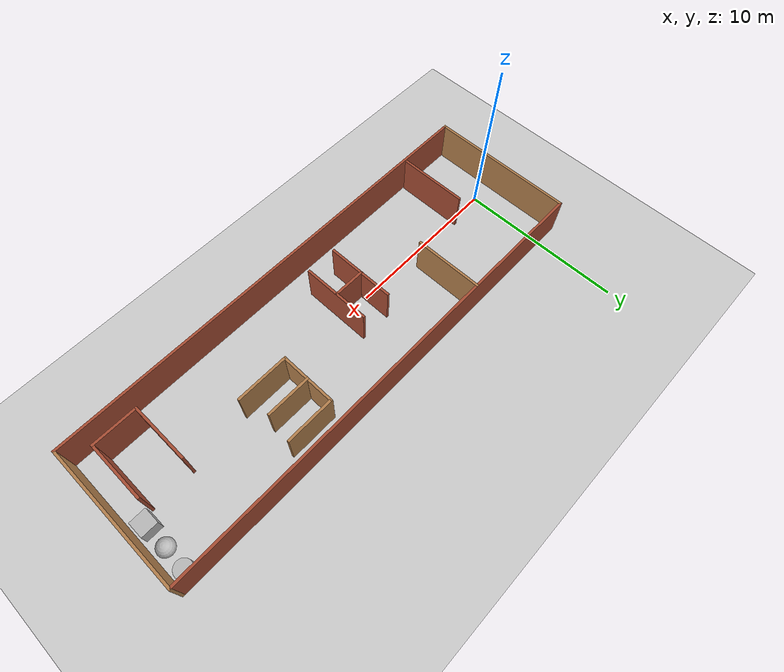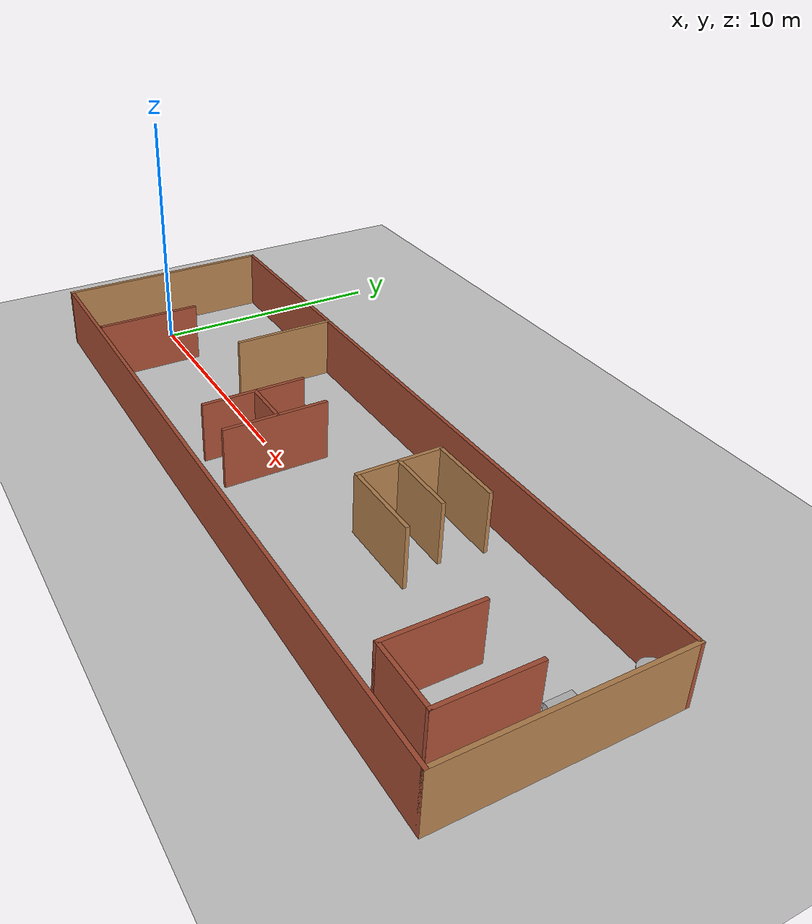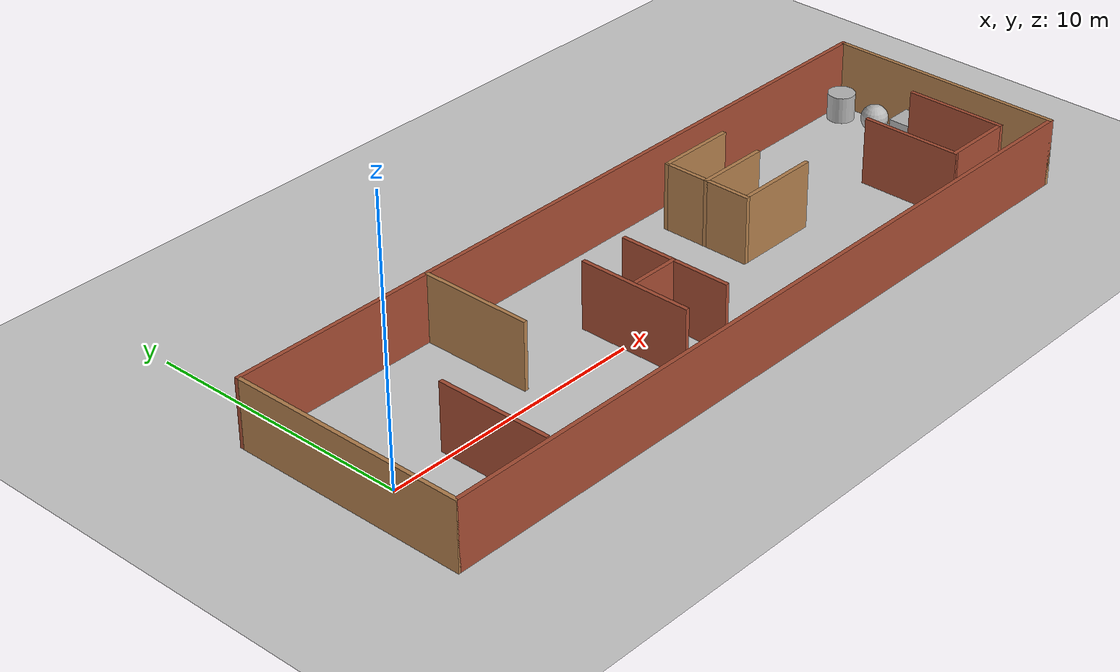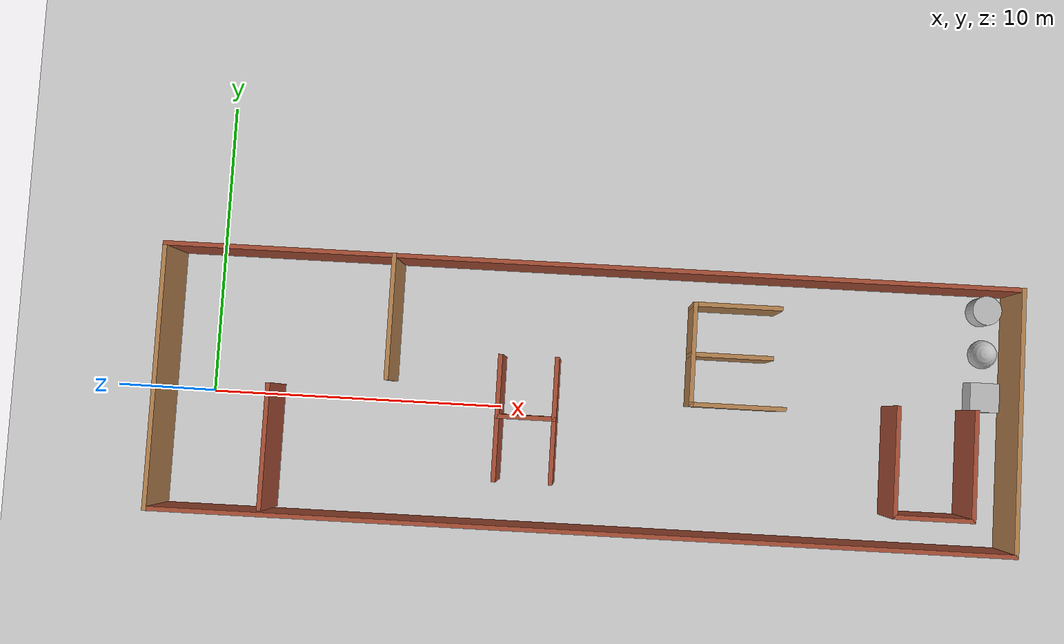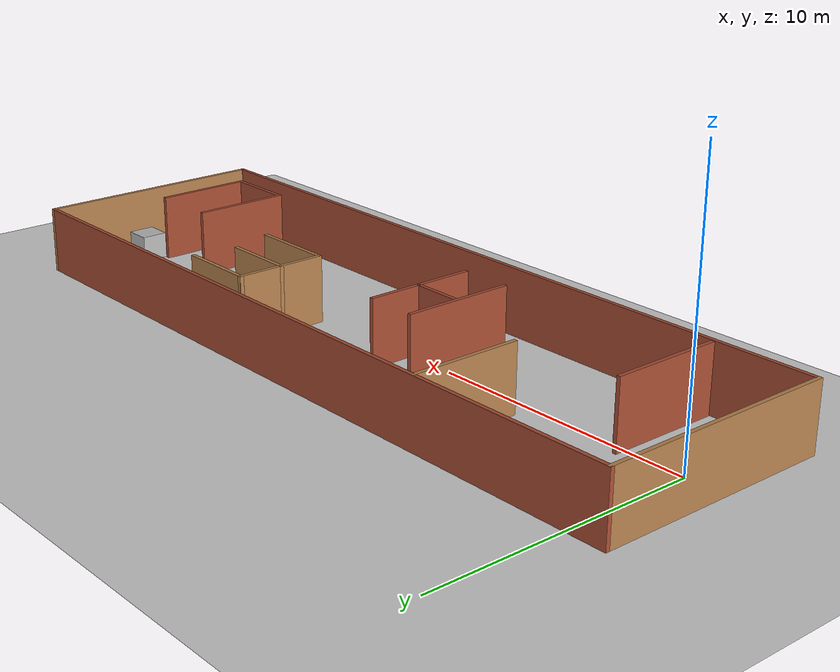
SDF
<sdf version="1.6">
 <world name="default">
  <light name="sun" type="directional">
   <pose>0 0 10 0 -0 0</pose>
   <diffuse>0.8 0.8 0.8 1</diffuse>
   <specular>0.2 0.2 0.2 1</specular>
   <attenuation>
    <range>1000</range>
    <constant>0.9</constant>
    <linear>0.01</linear>
    <quadratic>0.001</quadratic>
   </attenuation>
   <direction>-0.5 0.1 -0.9</direction>
  </light>
  <model name="ground_plane">
   <static>1</static>
   <link name="link">
    <collision name="collision">
     <geometry><plane><normal>0 0 1</normal><size>100 100</size></plane></geometry>
     <surface><friction><ode><mu>100</mu><mu2>50</mu2></ode></friction></surface>
    </collision>
    <visual name="visual">
     <cast_shadows>0</cast_shadows>
     <geometry><plane><normal>0 0 1</normal><size>100 100</size></plane></geometry>
     <material>
      <script><uri>file://media/materials/scripts/gazebo.material</uri><name>Gazebo/Grey</name></script>
     </material>
    </visual>
   </link>
  </model>
  <gravity>0 0 -9.8</gravity>
  <magnetic_field>6e-06 2.3e-05 -4.2e-05</magnetic_field>
  <atmosphere type="adiabatic"/>
  <physics name="default_physics" default="0" type="ode">
   <max_step_size>0.001</max_step_size>
   <real_time_factor>1</real_time_factor>
   <real_time_update_rate>1000</real_time_update_rate>
  </physics>
  <scene><ambient>0.4 0.4 0.4 1</ambient><background>0.7 0.7 0.7 1</background><shadows>1</shadows></scene>
  <audio><device>default</device></audio>
  <spherical_coordinates>
   <surface_model>EARTH_WGS84</surface_model>
   <latitude_deg>0</latitude_deg>
   <longitude_deg>0</longitude_deg>
   <elevation>0</elevation>
   <heading_deg>0</heading_deg>
  </spherical_coordinates>
  <model name="heu">
   <pose>13.0063 0.41567 0 0 -0 0</pose>
   <link name="Wall_12">
    <collision name="Wall_12_Collision">
     <geometry><box><size>29 0.15 2.5</size></box></geometry>
     <pose>0 0 1.25 0 -0 0</pose>
    </collision>
    <visual name="Wall_12_Visual">
     <pose>0 0 1.25 0 -0 0</pose>
     <geometry><box><size>29 0.15 2.5</size></box></geometry>
     <material>
      <script><uri>file://media/materials/scripts/gazebo.material</uri><name>Gazebo/Bricks</name></script>
      <ambient>1 1 1 1</ambient>
     </material>
     <meta><layer>0</layer></meta>
    </visual>
    <pose>0 -4.425 0 0 -0 0</pose>
   </link>
   <link name="Wall_15">
    <collision name="Wall_15_Collision">
     <geometry><box><size>9 0.15 2.5</size></box></geometry>
     <pose>0 0 1.25 0 -0 0</pose>
    </collision>
    <visual name="Wall_15_Visual">
     <pose>0 0 1.25 0 -0 0</pose>
     <geometry><box><size>9 0.15 2.5</size></box></geometry>
     <material>
      <script><uri>file://media/materials/scripts/gazebo.material</uri><name>Gazebo/Wood</name></script>
      <ambient>1 1 1 1</ambient>
     </material>
     <meta><layer>0</layer></meta>
    </visual>
    <pose>14.425 0 0 0 -0 1.5708</pose>
   </link>
   <link name="Wall_17">
    <collision name="Wall_17_Collision">
     <geometry><box><size>29 0.15 2.5</size></box></geometry>
     <pose>0 0 1.25 0 -0 0</pose>
    </collision>
    <visual name="Wall_17_Visual">
     <pose>0 0 1.25 0 -0 0</pose>
     <geometry><box><size>29 0.15 2.5</size></box></geometry>
     <material>
      <script><uri>file://media/materials/scripts/gazebo.material</uri><name>Gazebo/Bricks</name></script>
      <ambient>1 1 1 1</ambient>
     </material>
     <meta><layer>0</layer></meta>
    </visual>
    <pose>0 4.425 0 0 -0 3.14159</pose>
   </link>
   <link name="Wall_18">
    <collision name="Wall_18_Collision">
     <geometry><box><size>9 0.15 2.5</size></box></geometry>
     <pose>0 0 1.25 0 -0 0</pose>
    </collision>
    <visual name="Wall_18_Visual">
     <pose>0 0 1.25 0 -0 0</pose>
     <geometry><box><size>9 0.15 2.5</size></box></geometry>
     <material>
      <script><uri>file://media/materials/scripts/gazebo.material</uri><name>Gazebo/Wood</name></script>
      <ambient>1 1 1 1</ambient>
     </material>
     <meta><layer>0</layer></meta>
    </visual>
    <pose>-14.425 0 0 0 -0 -1.5708</pose>
   </link>
   <link name="Wall_20">
    <collision name="Wall_20_Collision">
     <geometry><box><size>4.25 0.15 2.5</size></box></geometry>
     <pose>0 0 1.25 0 -0 0</pose>
    </collision>
    <visual name="Wall_20_Visual">
     <pose>0 0 1.25 0 -0 0</pose>
     <geometry><box><size>4.25 0.15 2.5</size></box></geometry>
     <material>
      <script><uri>file://media/materials/scripts/gazebo.material</uri><name>Gazebo/Bricks</name></script>
      <ambient>1 1 1 1</ambient>
     </material>
     <meta><layer>0</layer></meta>
    </visual>
    <pose>-10.6338 -2.18349 0 0 -0 -1.5708</pose>
   </link>
   <link name="Wall_23">
    <collision name="Wall_23_Collision">
     <geometry><box><size>4.25 0.15 2.5</size></box></geometry>
     <pose>0 0 1.25 0 -0 0</pose>
    </collision>
    <visual name="Wall_23_Visual">
     <pose>0 0 1.25 0 -0 0</pose>
     <geometry><box><size>4.25 0.15 2.5</size></box></geometry>
     <material>
      <script><uri>file://media/materials/scripts/gazebo.material</uri><name>Gazebo/Wood</name></script>
      <ambient>1 1 1 1</ambient>
     </material>
     <meta><layer>0</layer></meta>
    </visual>
    <pose>-6.71821 2.37446 0 0 -0 -1.5708</pose>
   </link>
   <link name="Wall_25">
    <collision name="Wall_25_Collision">
     <geometry><box><size>4.25 0.15 2.5</size></box></geometry>
     <pose>0 0 1.25 0 -0 0</pose>
    </collision>
    <visual name="Wall_25_Visual">
     <pose>0 0 1.25 0 -0 0</pose>
     <geometry><box><size>4.25 0.15 2.5</size></box></geometry>
     <material>
      <script><uri>file://media/materials/scripts/gazebo.material</uri><name>Gazebo/Bricks</name></script>
      <ambient>1 1 1 1</ambient>
     </material>
     <meta><layer>0</layer></meta>
    </visual>
    <pose>-2.95562 -0.806927 0 0 -0 -1.5708</pose>
   </link>
   <link name="Wall_27">
    <collision name="Wall_27_Collision">
     <geometry><box><size>2 0.15 2.5</size></box></geometry>
     <pose>0 0 1.25 0 -0 0</pose>
    </collision>
    <visual name="Wall_27_Visual">
     <pose>0 0 1.25 0 -0 0</pose>
     <geometry><box><size>2 0.15 2.5</size></box></geometry>
     <material>
      <script><uri>file://media/materials/scripts/gazebo.material</uri><name>Gazebo/Bricks</name></script>
      <ambient>1 1 1 1</ambient>
     </material>
     <meta><layer>0</layer></meta>
    </visual>
    <pose>-2.00003 -0.745291 0 0 -0 0</pose>
   </link>
   <link name="Wall_30">
    <collision name="Wall_30_Collision">
     <geometry><box><size>4.25 0.15 2.5</size></box></geometry>
     <pose>0 0 1.25 0 -0 0</pose>
    </collision>
    <visual name="Wall_30_Visual">
     <pose>0 0 1.25 0 -0 0</pose>
     <geometry><box><size>4.25 0.15 2.5</size></box></geometry>
     <material>
      <script><uri>file://media/materials/scripts/gazebo.material</uri><name>Gazebo/Bricks</name></script>
      <ambient>1 1 1 1</ambient>
     </material>
     <meta><layer>0</layer></meta>
    </visual>
    <pose>-1.05902 -0.806927 0 0 -0 -1.5708</pose>
   </link>
   <link name="Wall_33">
    <collision name="Wall_33_Collision">
     <geometry><box><size>3 0.15 2.5</size></box></geometry>
     <pose>0 0 1.25 0 -0 0</pose>
    </collision>
    <visual name="Wall_33_Visual">
     <pose>0 0 1.25 0 -0 0</pose>
     <geometry><box><size>3 0.15 2.5</size></box></geometry>
     <material>
      <script><uri>file://media/materials/scripts/gazebo.material</uri><name>Gazebo/Wood</name></script>
      <ambient>1 1 1 1</ambient>
     </material>
     <meta><layer>0</layer></meta>
    </visual>
    <pose>4.89333 3.3538 0 0 -0 0</pose>
   </link>
   <link name="Wall_35">
    <collision name="Wall_35_Collision">
     <geometry><box><size>3.5 0.15 2.5</size></box></geometry>
     <pose>0 0 1.25 0 -0 0</pose>
    </collision>
    <visual name="Wall_35_Visual">
     <pose>0 0 1.25 0 -0 0</pose>
     <geometry><box><size>3.5 0.15 2.5</size></box></geometry>
     <material>
      <script><uri>file://media/materials/scripts/gazebo.material</uri><name>Gazebo/Wood</name></script>
      <ambient>1 1 1 1</ambient>
     </material>
     <meta><layer>0</layer></meta>
    </visual>
    <pose>3.46833 1.6788 0 0 -0 -1.5708</pose>
   </link>
   <link name="Wall_38">
    <collision name="Wall_38_Collision">
     <geometry><box><size>3.25 0.15 2.5</size></box></geometry>
     <pose>0 0 1.25 0 -0 0</pose>
    </collision>
    <visual name="Wall_38_Visual">
     <pose>0 0 1.25 0 -0 0</pose>
     <geometry><box><size>3.25 0.15 2.5</size></box></geometry>
     <material>
      <script><uri>file://media/materials/scripts/gazebo.material</uri><name>Gazebo/Wood</name></script>
      <ambient>1 1 1 1</ambient>
     </material>
     <meta><layer>0</layer></meta>
    </visual>
    <pose>5.01833 0.003799 0 0 -0 0</pose>
   </link>
   <link name="Wall_40">
    <collision name="Wall_40_Collision">
     <geometry><box><size>2.75 0.15 2.5</size></box></geometry>
     <pose>0 0 1.25 0 -0 0</pose>
    </collision>
    <visual name="Wall_40_Visual">
     <pose>0 0 1.25 0 -0 0</pose>
     <geometry><box><size>2.75 0.15 2.5</size></box></geometry>
     <material>
      <script><uri>file://media/materials/scripts/gazebo.material</uri><name>Gazebo/Wood</name></script>
      <ambient>1 1 1 1</ambient>
     </material>
     <meta><layer>0</layer></meta>
    </visual>
    <pose>4.76833 1.67134 0 0 -0 0</pose>
   </link>
   <link name="Wall_42">
    <collision name="Wall_42_Collision">
     <geometry><box><size>3.75 0.15 2.5</size></box></geometry>
     <pose>0 0 1.25 0 -0 0</pose>
    </collision>
    <visual name="Wall_42_Visual">
     <pose>0 0 1.25 0 -0 0</pose>
     <geometry><box><size>3.75 0.15 2.5</size></box></geometry>
     <material>
      <script><uri>file://media/materials/scripts/gazebo.material</uri><name>Gazebo/Bricks</name></script>
      <ambient>1 1 1 1</ambient>
     </material>
     <meta><layer>0</layer></meta>
    </visual>
    <pose>10.3817 -1.53581 0 0 -0 -1.5708</pose>
   </link>
   <link name="Wall_43">
    <collision name="Wall_43_Collision">
     <geometry><box><size>2.75 0.15 2.5</size></box></geometry>
     <pose>0 0 1.25 0 -0 0</pose>
    </collision>
    <visual name="Wall_43_Visual">
     <pose>0 0 1.25 0 -0 0</pose>
     <geometry><box><size>2.75 0.15 2.5</size></box></geometry>
     <material>
      <script><uri>file://media/materials/scripts/gazebo.material</uri><name>Gazebo/Bricks</name></script>
      <ambient>1 1 1 1</ambient>
     </material>
     <meta><layer>0</layer></meta>
    </visual>
    <pose>11.6817 -3.33581 0 0 -0 0</pose>
   </link>
   <link name="Wall_44">
    <collision name="Wall_44_Collision">
     <geometry><box><size>3.75 0.15 2.5</size></box></geometry>
     <pose>0 0 1.25 0 -0 0</pose>
    </collision>
    <visual name="Wall_44_Visual">
     <pose>0 0 1.25 0 -0 0</pose>
     <geometry><box><size>3.75 0.15 2.5</size></box></geometry>
     <material>
      <script><uri>file://media/materials/scripts/gazebo.material</uri><name>Gazebo/Bricks</name></script>
      <ambient>1 1 1 1</ambient>
     </material>
     <meta><layer>0</layer></meta>
    </visual>
    <pose>12.9817 -1.53581 0 0 -0 1.5708</pose>
   </link>
   <static>1</static>
  </model>
  <model name="textured_shapes">
   <pose>26.6402 2.7178 0.5 0 -0 0</pose>
   <link name="box">
    <pose>0 -1.5 0 0 -0 0</pose>
    <collision name="collision"><geometry><box><size>1 1 1</size></box></geometry></collision>
    <visual name="visual">
     <geometry><box><size>1 1 1</size></box></geometry>
     <material>
      <script>
       <uri>model://textured_shapes/materials/scripts</uri>
       <uri>model://textured_shapes/materials/textures</uri>
       <name>TexturedShape/Squares</name>
      </script>
     </material>
    </visual>
    <inertial>
     <inertia><ixx>1</ixx><ixy>0</ixy><ixz>0</ixz><iyy>1</iyy><iyz>0</iyz><izz>1</izz></inertia>
     <mass>1</mass>
    </inertial>
   </link>
   <link name="sphere">
    <collision name="collision"><geometry><sphere><radius>0.5</radius></sphere></geometry></collision>
    <visual name="visual">
     <geometry><sphere><radius>0.5</radius></sphere></geometry>
     <material>
      <script>
       <uri>model://textured_shapes/materials/scripts</uri>
       <uri>model://textured_shapes/materials/textures</uri>
       <name>TexturedShape/Squares</name>
      </script>
     </material>
    </visual>
    <inertial>
     <inertia><ixx>1</ixx><ixy>0</ixy><ixz>0</ixz><iyy>1</iyy><iyz>0</iyz><izz>1</izz></inertia>
     <mass>1</mass>
    </inertial>
   </link>
   <link name="cylinder">
    <pose>0 1.5 0 0 -0 0</pose>
    <collision name="collision">
     <geometry><cylinder><radius>0.5</radius><length>1</length></cylinder></geometry>
    </collision>
    <visual name="visual">
     <geometry><cylinder><radius>0.5</radius><length>1</length></cylinder></geometry>
     <material>
      <script>
       <uri>model://textured_shapes/materials/scripts</uri>
       <uri>model://textured_shapes/materials/textures</uri>
       <name>TexturedShape/Squares</name>
      </script>
     </material>
    </visual>
    <inertial>
     <inertia><ixx>1</ixx><ixy>0</ixy><ixz>0</ixz><iyy>1</iyy><iyz>0</iyz><izz>1</izz></inertia>
     <mass>1</mass>
    </inertial>
   </link>
  </model>
 </world>
</sdf>
